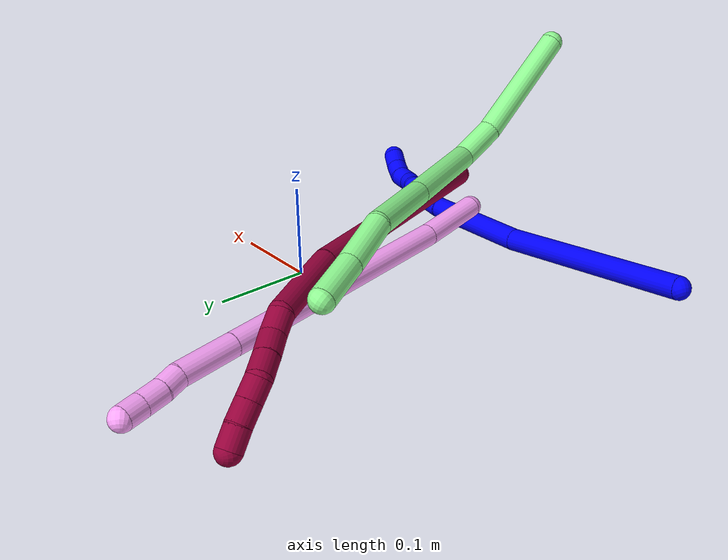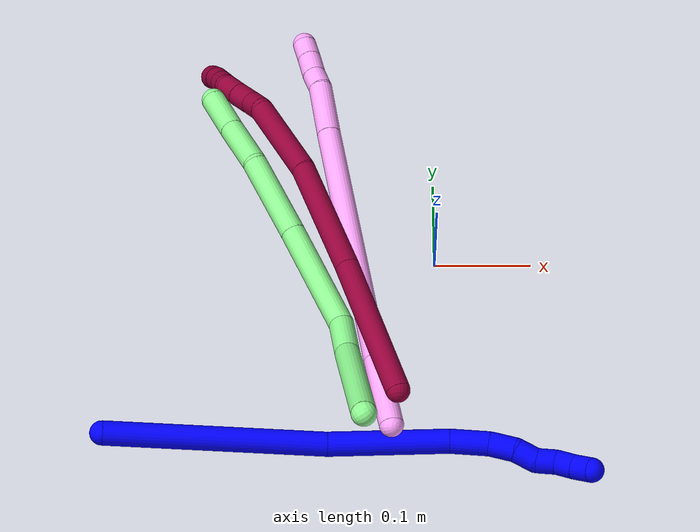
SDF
<sdf version="1.7">
 <world name="default">
  <model name="1">
   <static>0</static>
   <link name="1">
    <collision name="collision-cylinder-e_1_1_4">
     <pose>0.091996 0.01532 -0.063463 -2.90473 0.95362 -2.68879</pose>
     <geometry><cylinder><radius>0.0125</radius><length>0.225615</length></cylinder></geometry>
     <surface>
      <friction><ode><mu>1.16</mu><mu2>1.16</mu2><slip1>0</slip1><slip2>0</slip2></ode></friction>
      <contact><ode><kp>1e+06</kp><kd>1</kd><max_vel>0</max_vel><min_depth>0.001</min_depth></ode></contact>
     </surface>
    </collision>
    <visual name="visual-cylinder-e_1_1_4">
     <pose>0.091996 0.01532 -0.063463 -2.90473 0.95362 -2.68879</pose>
     <geometry><cylinder><radius>0.0125</radius><length>0.225615</length></cylinder></geometry>
     <material><ambient>0 0 1 1</ambient></material>
    </visual>
    <collision name="collision-cylinder-e_2_4_5">
     <pose>0.230759 0.035034 -0.166847 -3.03196 0.861218 -2.90382</pose>
     <geometry><cylinder><radius>0.0125</radius><length>0.12329</length></cylinder></geometry>
     <surface>
      <friction><ode><mu>1.16</mu><mu2>1.16</mu2><slip1>0</slip1><slip2>0</slip2></ode></friction>
      <contact><ode><kp>1e+06</kp><kd>1</kd><max_vel>0</max_vel><min_depth>0.001</min_depth></ode></contact>
     </surface>
    </collision>
    <visual name="visual-cylinder-e_2_4_5">
     <pose>0.230759 0.035034 -0.166847 -3.03196 0.861218 -2.90382</pose>
     <geometry><cylinder><radius>0.0125</radius><length>0.12329</length></cylinder></geometry>
     <material><ambient>0 0 1 1</ambient></material>
    </visual>
    <collision name="collision-cylinder-e_3_5_6">
     <pose>0.290927 0.042919 -0.221331 -2.90632 0.730037 -2.54172</pose>
     <geometry><cylinder><radius>0.0125</radius><length>0.040193</length></cylinder></geometry>
     <surface>
      <friction><ode><mu>1.16</mu><mu2>1.16</mu2><slip1>0</slip1><slip2>0</slip2></ode></friction>
      <contact><ode><kp>1e+06</kp><kd>1</kd><max_vel>0</max_vel><min_depth>0.001</min_depth></ode></contact>
     </surface>
    </collision>
    <visual name="visual-cylinder-e_3_5_6">
     <pose>0.290927 0.042919 -0.221331 -2.90632 0.730037 -2.54172</pose>
     <geometry><cylinder><radius>0.0125</radius><length>0.040193</length></cylinder></geometry>
     <material><ambient>0 0 1 1</ambient></material>
    </visual>
    <collision name="collision-cylinder-e_4_6_7">
     <pose>0.311897 0.051017 -0.246252 -2.72309 0.588526 -1.91918</pose>
     <geometry><cylinder><radius>0.0125</radius><length>0.027262</length></cylinder></geometry>
     <surface>
      <friction><ode><mu>1.16</mu><mu2>1.16</mu2><slip1>0</slip1><slip2>0</slip2></ode></friction>
      <contact><ode><kp>1e+06</kp><kd>1</kd><max_vel>0</max_vel><min_depth>0.001</min_depth></ode></contact>
     </surface>
    </collision>
    <visual name="visual-cylinder-e_4_6_7">
     <pose>0.311897 0.051017 -0.246252 -2.72309 0.588526 -1.91918</pose>
     <geometry><cylinder><radius>0.0125</radius><length>0.027262</length></cylinder></geometry>
     <material><ambient>0 0 1 1</ambient></material>
    </visual>
    <collision name="collision-cylinder-e_5_7_8">
     <pose>0.326143 0.061915 -0.26324 -2.3824 0.631228 -1.37181</pose>
     <geometry><cylinder><radius>0.0125</radius><length>0.022638</length></cylinder></geometry>
     <surface>
      <friction><ode><mu>1.16</mu><mu2>1.16</mu2><slip1>0</slip1><slip2>0</slip2></ode></friction>
      <contact><ode><kp>1e+06</kp><kd>1</kd><max_vel>0</max_vel><min_depth>0.001</min_depth></ode></contact>
     </surface>
    </collision>
    <visual name="visual-cylinder-e_5_7_8">
     <pose>0.326143 0.061915 -0.26324 -2.3824 0.631228 -1.37181</pose>
     <geometry><cylinder><radius>0.0125</radius><length>0.022638</length></cylinder></geometry>
     <material><ambient>0 0 1 1</ambient></material>
    </visual>
    <collision name="collision-cylinder-e_6_8_9">
     <pose>0.339679 0.070049 -0.277244 -2.89651 0.733797 -2.52133</pose>
     <geometry><cylinder><radius>0.0125</radius><length>0.020475</length></cylinder></geometry>
     <surface>
      <friction><ode><mu>1.16</mu><mu2>1.16</mu2><slip1>0</slip1><slip2>0</slip2></ode></friction>
      <contact><ode><kp>1e+06</kp><kd>1</kd><max_vel>0</max_vel><min_depth>0.001</min_depth></ode></contact>
     </surface>
    </collision>
    <visual name="visual-cylinder-e_6_8_9">
     <pose>0.339679 0.070049 -0.277244 -2.89651 0.733797 -2.52133</pose>
     <geometry><cylinder><radius>0.0125</radius><length>0.020475</length></cylinder></geometry>
     <material><ambient>0 0 1 1</ambient></material>
    </visual>
    <collision name="collision-cylinder-e_7_9_10">
     <pose>0.350253 0.075564 -0.293392 -2.74534 0.372664 -1.50793</pose>
     <geometry><cylinder><radius>0.0125</radius><length>0.020421</length></cylinder></geometry>
     <surface>
      <friction><ode><mu>1.16</mu><mu2>1.16</mu2><slip1>0</slip1><slip2>0</slip2></ode></friction>
      <contact><ode><kp>1e+06</kp><kd>1</kd><max_vel>0</max_vel><min_depth>0.001</min_depth></ode></contact>
     </surface>
    </collision>
    <visual name="visual-cylinder-e_7_9_10">
     <pose>0.350253 0.075564 -0.293392 -2.74534 0.372664 -1.50793</pose>
     <geometry><cylinder><radius>0.0125</radius><length>0.020421</length></cylinder></geometry>
     <material><ambient>0 0 1 1</ambient></material>
    </visual>
    <collision name="collision-cylinder-e_8_10_2">
     <pose>0.356057 0.082053 -0.311587 -2.85098 0.20913 -1.24431</pose>
     <geometry><cylinder><radius>0.0125</radius><length>0.020106</length></cylinder></geometry>
     <surface>
      <friction><ode><mu>1.16</mu><mu2>1.16</mu2><slip1>0</slip1><slip2>0</slip2></ode></friction>
      <contact><ode><kp>1e+06</kp><kd>1</kd><max_vel>0</max_vel><min_depth>0.001</min_depth></ode></contact>
     </surface>
    </collision>
    <visual name="visual-cylinder-e_8_10_2">
     <pose>0.356057 0.082053 -0.311587 -2.85098 0.20913 -1.24431</pose>
     <geometry><cylinder><radius>0.0125</radius><length>0.020106</length></cylinder></geometry>
     <material><ambient>0 0 1 1</ambient></material>
    </visual>
    <collision name="collision-sphere-2">
     <pose>0.358144 0.08487 -0.321009 0 -0 0</pose>
     <geometry><sphere><radius>0.0125</radius></sphere></geometry>
     <surface>
      <friction><ode><mu>1.16</mu><mu2>1.16</mu2><slip1>0</slip1><slip2>0</slip2></ode></friction>
      <contact><ode><kp>1e+06</kp><kd>1</kd><max_vel>0</max_vel><min_depth>0.001</min_depth></ode></contact>
     </surface>
    </collision>
    <visual name="visual-sphere-2">
     <pose>0.358144 0.08487 -0.321009 0 -0 0</pose>
     <geometry><sphere><radius>0.0125</radius></sphere></geometry>
     <material><ambient>0 0 1 1</ambient></material>
    </visual>
    <collision name="collision-sphere-10">
     <pose>0.35397 0.079235 -0.302165 0 -0 0</pose>
     <geometry><sphere><radius>0.0125</radius></sphere></geometry>
     <surface>
      <friction><ode><mu>1.16</mu><mu2>1.16</mu2><slip1>0</slip1><slip2>0</slip2></ode></friction>
      <contact><ode><kp>1e+06</kp><kd>1</kd><max_vel>0</max_vel><min_depth>0.001</min_depth></ode></contact>
     </surface>
    </collision>
    <visual name="visual-sphere-10">
     <pose>0.35397 0.079235 -0.302165 0 -0 0</pose>
     <geometry><sphere><radius>0.0125</radius></sphere></geometry>
     <material><ambient>0 0 1 1</ambient></material>
    </visual>
    <collision name="collision-sphere-9">
     <pose>0.346535 0.071894 -0.284619 0 -0 0</pose>
     <geometry><sphere><radius>0.0125</radius></sphere></geometry>
     <surface>
      <friction><ode><mu>1.16</mu><mu2>1.16</mu2><slip1>0</slip1><slip2>0</slip2></ode></friction>
      <contact><ode><kp>1e+06</kp><kd>1</kd><max_vel>0</max_vel><min_depth>0.001</min_depth></ode></contact>
     </surface>
    </collision>
    <visual name="visual-sphere-9">
     <pose>0.346535 0.071894 -0.284619 0 -0 0</pose>
     <geometry><sphere><radius>0.0125</radius></sphere></geometry>
     <material><ambient>0 0 1 1</ambient></material>
    </visual>
    <collision name="collision-sphere-4">
     <pose>0.183993 0.030639 -0.126926 0 -0 0</pose>
     <geometry><sphere><radius>0.0125</radius></sphere></geometry>
     <surface>
      <friction><ode><mu>1.16</mu><mu2>1.16</mu2><slip1>0</slip1><slip2>0</slip2></ode></friction>
      <contact><ode><kp>1e+06</kp><kd>1</kd><max_vel>0</max_vel><min_depth>0.001</min_depth></ode></contact>
     </surface>
    </collision>
    <visual name="visual-sphere-4">
     <pose>0.183993 0.030639 -0.126926 0 -0 0</pose>
     <geometry><sphere><radius>0.0125</radius></sphere></geometry>
     <material><ambient>0 0 1 1</ambient></material>
    </visual>
    <collision name="collision-sphere-1">
     <geometry><sphere><radius>0.0125</radius></sphere></geometry>
     <surface>
      <friction><ode><mu>1.16</mu><mu2>1.16</mu2><slip1>0</slip1><slip2>0</slip2></ode></friction>
      <contact><ode><kp>1e+06</kp><kd>1</kd><max_vel>0</max_vel><min_depth>0.001</min_depth></ode></contact>
     </surface>
    </collision>
    <visual name="visual-sphere-1">
     <geometry><sphere><radius>0.0125</radius></sphere></geometry>
     <material><ambient>0 0 1 1</ambient></material>
    </visual>
    <collision name="collision-sphere-8">
     <pose>0.332823 0.068205 -0.269868 0 -0 0</pose>
     <geometry><sphere><radius>0.0125</radius></sphere></geometry>
     <surface>
      <friction><ode><mu>1.16</mu><mu2>1.16</mu2><slip1>0</slip1><slip2>0</slip2></ode></friction>
      <contact><ode><kp>1e+06</kp><kd>1</kd><max_vel>0</max_vel><min_depth>0.001</min_depth></ode></contact>
     </surface>
    </collision>
    <visual name="visual-sphere-8">
     <pose>0.332823 0.068205 -0.269868 0 -0 0</pose>
     <geometry><sphere><radius>0.0125</radius></sphere></geometry>
     <material><ambient>0 0 1 1</ambient></material>
    </visual>
    <collision name="collision-sphere-5">
     <pose>0.277525 0.039428 -0.206769 0 -0 0</pose>
     <geometry><sphere><radius>0.0125</radius></sphere></geometry>
     <surface>
      <friction><ode><mu>1.16</mu><mu2>1.16</mu2><slip1>0</slip1><slip2>0</slip2></ode></friction>
      <contact><ode><kp>1e+06</kp><kd>1</kd><max_vel>0</max_vel><min_depth>0.001</min_depth></ode></contact>
     </surface>
    </collision>
    <visual name="visual-sphere-5">
     <pose>0.277525 0.039428 -0.206769 0 -0 0</pose>
     <geometry><sphere><radius>0.0125</radius></sphere></geometry>
     <material><ambient>0 0 1 1</ambient></material>
    </visual>
    <collision name="collision-sphere-6">
     <pose>0.30433 0.04641 -0.235893 0 -0 0</pose>
     <geometry><sphere><radius>0.0125</radius></sphere></geometry>
     <surface>
      <friction><ode><mu>1.16</mu><mu2>1.16</mu2><slip1>0</slip1><slip2>0</slip2></ode></friction>
      <contact><ode><kp>1e+06</kp><kd>1</kd><max_vel>0</max_vel><min_depth>0.001</min_depth></ode></contact>
     </surface>
    </collision>
    <visual name="visual-sphere-6">
     <pose>0.30433 0.04641 -0.235893 0 -0 0</pose>
     <geometry><sphere><radius>0.0125</radius></sphere></geometry>
     <material><ambient>0 0 1 1</ambient></material>
    </visual>
    <collision name="collision-sphere-7">
     <pose>0.319463 0.055625 -0.256611 0 -0 0</pose>
     <geometry><sphere><radius>0.0125</radius></sphere></geometry>
     <surface>
      <friction><ode><mu>1.16</mu><mu2>1.16</mu2><slip1>0</slip1><slip2>0</slip2></ode></friction>
      <contact><ode><kp>1e+06</kp><kd>1</kd><max_vel>0</max_vel><min_depth>0.001</min_depth></ode></contact>
     </surface>
    </collision>
    <visual name="visual-sphere-7">
     <pose>0.319463 0.055625 -0.256611 0 -0 0</pose>
     <geometry><sphere><radius>0.0125</radius></sphere></geometry>
     <material><ambient>0 0 1 1</ambient></material>
    </visual>
    <inertial>
     <pose>0.196103 0.03384 -0.14878 0 -0 0</pose>
     <mass>0.5</mass>
     <inertia>
      <ixx>-0.000861</ixx>
      <ixy>0</ixy>
      <ixz>0</ixz>
      <iyy>0.00082</iyy>
      <iyz>0</iyz>
      <izz>-0.001091</izz>
     </inertia>
    </inertial>
   </link>
   <pose>-0.336019 -0.221211 0.038435 -2.6198 0.606138 0.42008</pose>
  </model>
  <model name="4">
   <static>0</static>
   <link name="4">
    <collision name="collision-cylinder-e_1_1_4">
     <pose>0.005773 0.031715 0.024887 -0.905455 0.14223 -0.069273</pose>
     <geometry><cylinder><radius>0.0125</radius><length>0.081451</length></cylinder></geometry>
     <surface>
      <friction><ode><mu>1.16</mu><mu2>1.16</mu2><slip1>0</slip1><slip2>0</slip2></ode></friction>
      <contact><ode><kp>1e+06</kp><kd>1</kd><max_vel>0</max_vel><min_depth>0.001</min_depth></ode></contact>
     </surface>
    </collision>
    <visual name="visual-cylinder-e_1_1_4">
     <pose>0.005773 0.031715 0.024887 -0.905455 0.14223 -0.069273</pose>
     <geometry><cylinder><radius>0.0125</radius><length>0.081451</length></cylinder></geometry>
     <material><ambient>1 0.65098 0.996078 1</ambient></material>
    </visual>
    <collision name="collision-cylinder-e_2_4_5">
     <pose>0.035799 0.179946 0.131443 -0.959448 0.16883 -0.087988</pose>
     <geometry><cylinder><radius>0.0125</radius><length>0.288679</length></cylinder></geometry>
     <surface>
      <friction><ode><mu>1.16</mu><mu2>1.16</mu2><slip1>0</slip1><slip2>0</slip2></ode></friction>
      <contact><ode><kp>1e+06</kp><kd>1</kd><max_vel>0</max_vel><min_depth>0.001</min_depth></ode></contact>
     </surface>
    </collision>
    <visual name="visual-cylinder-e_2_4_5">
     <pose>0.035799 0.179946 0.131443 -0.959448 0.16883 -0.087988</pose>
     <geometry><cylinder><radius>0.0125</radius><length>0.288679</length></cylinder></geometry>
     <material><ambient>1 0.65098 0.996078 1</ambient></material>
    </visual>
    <collision name="collision-cylinder-e_3_5_6">
     <pose>0.0646 0.322256 0.231074 -0.962507 0.143701 -0.075135</pose>
     <geometry><cylinder><radius>0.0125</radius><length>0.063519</length></cylinder></geometry>
     <surface>
      <friction><ode><mu>1.16</mu><mu2>1.16</mu2><slip1>0</slip1><slip2>0</slip2></ode></friction>
      <contact><ode><kp>1e+06</kp><kd>1</kd><max_vel>0</max_vel><min_depth>0.001</min_depth></ode></contact>
     </surface>
    </collision>
    <visual name="visual-cylinder-e_3_5_6">
     <pose>0.0646 0.322256 0.231074 -0.962507 0.143701 -0.075135</pose>
     <geometry><cylinder><radius>0.0125</radius><length>0.063519</length></cylinder></geometry>
     <material><ambient>1 0.65098 0.996078 1</ambient></material>
    </visual>
    <collision name="collision-cylinder-e_4_6_7">
     <pose>0.071042 0.355019 0.256663 -0.740366 0.181236 -0.070497</pose>
     <geometry><cylinder><radius>0.0125</radius><length>0.021007</length></cylinder></geometry>
     <surface>
      <friction><ode><mu>1.16</mu><mu2>1.16</mu2><slip1>0</slip1><slip2>0</slip2></ode></friction>
      <contact><ode><kp>1e+06</kp><kd>1</kd><max_vel>0</max_vel><min_depth>0.001</min_depth></ode></contact>
     </surface>
    </collision>
    <visual name="visual-cylinder-e_4_6_7">
     <pose>0.071042 0.355019 0.256663 -0.740366 0.181236 -0.070497</pose>
     <geometry><cylinder><radius>0.0125</radius><length>0.021007</length></cylinder></geometry>
     <material><ambient>1 0.65098 0.996078 1</ambient></material>
    </visual>
    <collision name="collision-cylinder-e_5_7_8">
     <pose>0.074898 0.371176 0.272056 -0.869046 0.161754 -0.0752</pose>
     <geometry><cylinder><radius>0.0125</radius><length>0.024379</length></cylinder></geometry>
     <surface>
      <friction><ode><mu>1.16</mu><mu2>1.16</mu2><slip1>0</slip1><slip2>0</slip2></ode></friction>
      <contact><ode><kp>1e+06</kp><kd>1</kd><max_vel>0</max_vel><min_depth>0.001</min_depth></ode></contact>
     </surface>
    </collision>
    <visual name="visual-cylinder-e_5_7_8">
     <pose>0.074898 0.371176 0.272056 -0.869046 0.161754 -0.0752</pose>
     <geometry><cylinder><radius>0.0125</radius><length>0.024379</length></cylinder></geometry>
     <material><ambient>1 0.65098 0.996078 1</ambient></material>
    </visual>
    <collision name="collision-cylinder-e_6_8_2">
     <pose>0.079125 0.38821 0.286395 -0.873581 0.217708 -0.101955</pose>
     <geometry><cylinder><radius>0.0125</radius><length>0.020966</length></cylinder></geometry>
     <surface>
      <friction><ode><mu>1.16</mu><mu2>1.16</mu2><slip1>0</slip1><slip2>0</slip2></ode></friction>
      <contact><ode><kp>1e+06</kp><kd>1</kd><max_vel>0</max_vel><min_depth>0.001</min_depth></ode></contact>
     </surface>
    </collision>
    <visual name="visual-cylinder-e_6_8_2">
     <pose>0.079125 0.38821 0.286395 -0.873581 0.217708 -0.101955</pose>
     <geometry><cylinder><radius>0.0125</radius><length>0.020966</length></cylinder></geometry>
     <material><ambient>1 0.65098 0.996078 1</ambient></material>
    </visual>
    <collision name="collision-sphere-2">
     <pose>0.08139 0.396057 0.292967 0 -0 0</pose>
     <geometry><sphere><radius>0.0125</radius></sphere></geometry>
     <surface>
      <friction><ode><mu>1.16</mu><mu2>1.16</mu2><slip1>0</slip1><slip2>0</slip2></ode></friction>
      <contact><ode><kp>1e+06</kp><kd>1</kd><max_vel>0</max_vel><min_depth>0.001</min_depth></ode></contact>
     </surface>
    </collision>
    <visual name="visual-sphere-2">
     <pose>0.08139 0.396057 0.292967 0 -0 0</pose>
     <geometry><sphere><radius>0.0125</radius></sphere></geometry>
     <material><ambient>1 0.65098 0.996078 1</ambient></material>
    </visual>
    <collision name="collision-sphere-4">
     <pose>0.011546 0.063431 0.049774 0 -0 0</pose>
     <geometry><sphere><radius>0.0125</radius></sphere></geometry>
     <surface>
      <friction><ode><mu>1.16</mu><mu2>1.16</mu2><slip1>0</slip1><slip2>0</slip2></ode></friction>
      <contact><ode><kp>1e+06</kp><kd>1</kd><max_vel>0</max_vel><min_depth>0.001</min_depth></ode></contact>
     </surface>
    </collision>
    <visual name="visual-sphere-4">
     <pose>0.011546 0.063431 0.049774 0 -0 0</pose>
     <geometry><sphere><radius>0.0125</radius></sphere></geometry>
     <material><ambient>1 0.65098 0.996078 1</ambient></material>
    </visual>
    <collision name="collision-sphere-1">
     <geometry><sphere><radius>0.0125</radius></sphere></geometry>
     <surface>
      <friction><ode><mu>1.16</mu><mu2>1.16</mu2><slip1>0</slip1><slip2>0</slip2></ode></friction>
      <contact><ode><kp>1e+06</kp><kd>1</kd><max_vel>0</max_vel><min_depth>0.001</min_depth></ode></contact>
     </surface>
    </collision>
    <visual name="visual-sphere-1">
     <geometry><sphere><radius>0.0125</radius></sphere></geometry>
     <material><ambient>1 0.65098 0.996078 1</ambient></material>
    </visual>
    <collision name="collision-sphere-8">
     <pose>0.076861 0.380363 0.279823 0 -0 0</pose>
     <geometry><sphere><radius>0.0125</radius></sphere></geometry>
     <surface>
      <friction><ode><mu>1.16</mu><mu2>1.16</mu2><slip1>0</slip1><slip2>0</slip2></ode></friction>
      <contact><ode><kp>1e+06</kp><kd>1</kd><max_vel>0</max_vel><min_depth>0.001</min_depth></ode></contact>
     </surface>
    </collision>
    <visual name="visual-sphere-8">
     <pose>0.076861 0.380363 0.279823 0 -0 0</pose>
     <geometry><sphere><radius>0.0125</radius></sphere></geometry>
     <material><ambient>1 0.65098 0.996078 1</ambient></material>
    </visual>
    <collision name="collision-sphere-5">
     <pose>0.060052 0.296462 0.213112 0 -0 0</pose>
     <geometry><sphere><radius>0.0125</radius></sphere></geometry>
     <surface>
      <friction><ode><mu>1.16</mu><mu2>1.16</mu2><slip1>0</slip1><slip2>0</slip2></ode></friction>
      <contact><ode><kp>1e+06</kp><kd>1</kd><max_vel>0</max_vel><min_depth>0.001</min_depth></ode></contact>
     </surface>
    </collision>
    <visual name="visual-sphere-5">
     <pose>0.060052 0.296462 0.213112 0 -0 0</pose>
     <geometry><sphere><radius>0.0125</radius></sphere></geometry>
     <material><ambient>1 0.65098 0.996078 1</ambient></material>
    </visual>
    <collision name="collision-sphere-6">
     <pose>0.069149 0.34805 0.249036 0 -0 0</pose>
     <geometry><sphere><radius>0.0125</radius></sphere></geometry>
     <surface>
      <friction><ode><mu>1.16</mu><mu2>1.16</mu2><slip1>0</slip1><slip2>0</slip2></ode></friction>
      <contact><ode><kp>1e+06</kp><kd>1</kd><max_vel>0</max_vel><min_depth>0.001</min_depth></ode></contact>
     </surface>
    </collision>
    <visual name="visual-sphere-6">
     <pose>0.069149 0.34805 0.249036 0 -0 0</pose>
     <geometry><sphere><radius>0.0125</radius></sphere></geometry>
     <material><ambient>1 0.65098 0.996078 1</ambient></material>
    </visual>
    <collision name="collision-sphere-7">
     <pose>0.072935 0.361988 0.26429 0 -0 0</pose>
     <geometry><sphere><radius>0.0125</radius></sphere></geometry>
     <surface>
      <friction><ode><mu>1.16</mu><mu2>1.16</mu2><slip1>0</slip1><slip2>0</slip2></ode></friction>
      <contact><ode><kp>1e+06</kp><kd>1</kd><max_vel>0</max_vel><min_depth>0.001</min_depth></ode></contact>
     </surface>
    </collision>
    <visual name="visual-sphere-7">
     <pose>0.072935 0.361988 0.26429 0 -0 0</pose>
     <geometry><sphere><radius>0.0125</radius></sphere></geometry>
     <material><ambient>1 0.65098 0.996078 1</ambient></material>
    </visual>
    <inertial>
     <pose>0.03977 0.19929 0.145356 0 -0 0</pose>
     <mass>0.5</mass>
     <inertia>
      <ixx>0.001882</ixx>
      <ixy>0</ixy>
      <ixz>0</ixz>
      <iyy>0.001075</iyy>
      <iyz>0</iyz>
      <izz>-0.002015</izz>
     </inertia>
    </inertial>
   </link>
   <pose>-0.047669 -0.210492 0.034307 2.72586 -0.755792 3.05003</pose>
  </model>
  <model name="8">
   <static>0</static>
   <link name="8">
    <collision name="collision-cylinder-e_1_1_4">
     <pose>0.001357 0.020428 -0.073545 -2.87065 0.017776 -0.130233</pose>
     <geometry><cylinder><radius>0.0125</radius><length>0.152683</length></cylinder></geometry>
     <surface>
      <friction><ode><mu>1.16</mu><mu2>1.16</mu2><slip1>0</slip1><slip2>0</slip2></ode></friction>
      <contact><ode><kp>1e+06</kp><kd>1</kd><max_vel>0</max_vel><min_depth>0.001</min_depth></ode></contact>
     </surface>
    </collision>
    <visual name="visual-cylinder-e_1_1_4">
     <pose>0.001357 0.020428 -0.073545 -2.87065 0.017776 -0.130233</pose>
     <geometry><cylinder><radius>0.0125</radius><length>0.152683</length></cylinder></geometry>
     <material><ambient>0.584314 0 0.227451 1</ambient></material>
    </visual>
    <collision name="collision-cylinder-e_2_4_5">
     <pose>0.005971 0.059291 -0.206101 -2.83881 0.052634 -0.341723</pose>
     <geometry><cylinder><radius>0.0125</radius><length>0.123818</length></cylinder></geometry>
     <surface>
      <friction><ode><mu>1.16</mu><mu2>1.16</mu2><slip1>0</slip1><slip2>0</slip2></ode></friction>
      <contact><ode><kp>1e+06</kp><kd>1</kd><max_vel>0</max_vel><min_depth>0.001</min_depth></ode></contact>
     </surface>
    </collision>
    <visual name="visual-cylinder-e_2_4_5">
     <pose>0.005971 0.059291 -0.206101 -2.83881 0.052634 -0.341723</pose>
     <geometry><cylinder><radius>0.0125</radius><length>0.123818</length></cylinder></geometry>
     <material><ambient>0.584314 0 0.227451 1</ambient></material>
    </visual>
    <collision name="collision-cylinder-e_3_5_6">
     <pose>0.007095 0.09782 -0.306148 -2.68624 -0.046643 0.200677</pose>
     <geometry><cylinder><radius>0.0125</radius><length>0.091483</length></cylinder></geometry>
     <surface>
      <friction><ode><mu>1.16</mu><mu2>1.16</mu2><slip1>0</slip1><slip2>0</slip2></ode></friction>
      <contact><ode><kp>1e+06</kp><kd>1</kd><max_vel>0</max_vel><min_depth>0.001</min_depth></ode></contact>
     </surface>
    </collision>
    <visual name="visual-cylinder-e_3_5_6">
     <pose>0.007095 0.09782 -0.306148 -2.68624 -0.046643 0.200677</pose>
     <geometry><cylinder><radius>0.0125</radius><length>0.091483</length></cylinder></geometry>
     <material><ambient>0.584314 0 0.227451 1</ambient></material>
    </visual>
    <collision name="collision-cylinder-e_4_6_7">
     <pose>-0.000565 0.123545 -0.355547 -2.54895 -0.501512 1.39612</pose>
     <geometry><cylinder><radius>0.0125</radius><length>0.022996</length></cylinder></geometry>
     <surface>
      <friction><ode><mu>1.16</mu><mu2>1.16</mu2><slip1>0</slip1><slip2>0</slip2></ode></friction>
      <contact><ode><kp>1e+06</kp><kd>1</kd><max_vel>0</max_vel><min_depth>0.001</min_depth></ode></contact>
     </surface>
    </collision>
    <visual name="visual-cylinder-e_4_6_7">
     <pose>-0.000565 0.123545 -0.355547 -2.54895 -0.501512 1.39612</pose>
     <geometry><cylinder><radius>0.0125</radius><length>0.022996</length></cylinder></geometry>
     <material><ambient>0.584314 0 0.227451 1</ambient></material>
    </visual>
    <collision name="collision-cylinder-e_5_7_8">
     <pose>-0.009076 0.136518 -0.372481 -2.43337 -0.258461 0.676054</pose>
     <geometry><cylinder><radius>0.0125</radius><length>0.023346</length></cylinder></geometry>
     <surface>
      <friction><ode><mu>1.16</mu><mu2>1.16</mu2><slip1>0</slip1><slip2>0</slip2></ode></friction>
      <contact><ode><kp>1e+06</kp><kd>1</kd><max_vel>0</max_vel><min_depth>0.001</min_depth></ode></contact>
     </surface>
    </collision>
    <visual name="visual-cylinder-e_5_7_8">
     <pose>-0.009076 0.136518 -0.372481 -2.43337 -0.258461 0.676054</pose>
     <geometry><cylinder><radius>0.0125</radius><length>0.023346</length></cylinder></geometry>
     <material><ambient>0.584314 0 0.227451 1</ambient></material>
    </visual>
    <collision name="collision-cylinder-e_6_8_9">
     <pose>-0.015319 0.150639 -0.389651 -2.47388 -0.289258 0.795128</pose>
     <geometry><cylinder><radius>0.0125</radius><length>0.022849</length></cylinder></geometry>
     <surface>
      <friction><ode><mu>1.16</mu><mu2>1.16</mu2><slip1>0</slip1><slip2>0</slip2></ode></friction>
      <contact><ode><kp>1e+06</kp><kd>1</kd><max_vel>0</max_vel><min_depth>0.001</min_depth></ode></contact>
     </surface>
    </collision>
    <visual name="visual-cylinder-e_6_8_9">
     <pose>-0.015319 0.150639 -0.389651 -2.47388 -0.289258 0.795128</pose>
     <geometry><cylinder><radius>0.0125</radius><length>0.022849</length></cylinder></geometry>
     <material><ambient>0.584314 0 0.227451 1</ambient></material>
    </visual>
    <collision name="collision-cylinder-e_7_9_10">
     <pose>-0.025129 0.16077 -0.405218 -2.69333 -0.702895 2.02914</pose>
     <geometry><cylinder><radius>0.0125</radius><length>0.020269</length></cylinder></geometry>
     <surface>
      <friction><ode><mu>1.16</mu><mu2>1.16</mu2><slip1>0</slip1><slip2>0</slip2></ode></friction>
      <contact><ode><kp>1e+06</kp><kd>1</kd><max_vel>0</max_vel><min_depth>0.001</min_depth></ode></contact>
     </surface>
    </collision>
    <visual name="visual-cylinder-e_7_9_10">
     <pose>-0.025129 0.16077 -0.405218 -2.69333 -0.702895 2.02914</pose>
     <geometry><cylinder><radius>0.0125</radius><length>0.020269</length></cylinder></geometry>
     <material><ambient>0.584314 0 0.227451 1</ambient></material>
    </visual>
    <collision name="collision-cylinder-e_8_10_11">
     <pose>-0.038395 0.167691 -0.419494 -2.68717 -0.690183 1.99849</pose>
     <geometry><cylinder><radius>0.0125</radius><length>0.021095</length></cylinder></geometry>
     <surface>
      <friction><ode><mu>1.16</mu><mu2>1.16</mu2><slip1>0</slip1><slip2>0</slip2></ode></friction>
      <contact><ode><kp>1e+06</kp><kd>1</kd><max_vel>0</max_vel><min_depth>0.001</min_depth></ode></contact>
     </surface>
    </collision>
    <visual name="visual-cylinder-e_8_10_11">
     <pose>-0.038395 0.167691 -0.419494 -2.68717 -0.690183 1.99849</pose>
     <geometry><cylinder><radius>0.0125</radius><length>0.021095</length></cylinder></geometry>
     <material><ambient>0.584314 0 0.227451 1</ambient></material>
    </visual>
    <collision name="collision-cylinder-e_9_11_2">
     <pose>-0.052795 0.17485 -0.433376 -2.64189 -0.798245 2.05336</pose>
     <geometry><cylinder><radius>0.0125</radius><length>0.021461</length></cylinder></geometry>
     <surface>
      <friction><ode><mu>1.16</mu><mu2>1.16</mu2><slip1>0</slip1><slip2>0</slip2></ode></friction>
      <contact><ode><kp>1e+06</kp><kd>1</kd><max_vel>0</max_vel><min_depth>0.001</min_depth></ode></contact>
     </surface>
    </collision>
    <visual name="visual-cylinder-e_9_11_2">
     <pose>-0.052795 0.17485 -0.433376 -2.64189 -0.798245 2.05336</pose>
     <geometry><cylinder><radius>0.0125</radius><length>0.021461</length></cylinder></geometry>
     <material><ambient>0.584314 0 0.227451 1</ambient></material>
    </visual>
    <collision name="collision-sphere-2">
     <pose>-0.060479 0.178439 -0.439949 0 -0 0</pose>
     <geometry><sphere><radius>0.0125</radius></sphere></geometry>
     <surface>
      <friction><ode><mu>1.16</mu><mu2>1.16</mu2><slip1>0</slip1><slip2>0</slip2></ode></friction>
      <contact><ode><kp>1e+06</kp><kd>1</kd><max_vel>0</max_vel><min_depth>0.001</min_depth></ode></contact>
     </surface>
    </collision>
    <visual name="visual-sphere-2">
     <pose>-0.060479 0.178439 -0.439949 0 -0 0</pose>
     <geometry><sphere><radius>0.0125</radius></sphere></geometry>
     <material><ambient>0.584314 0 0.227451 1</ambient></material>
    </visual>
    <collision name="collision-sphere-11">
     <pose>-0.045111 0.171261 -0.426802 0 -0 0</pose>
     <geometry><sphere><radius>0.0125</radius></sphere></geometry>
     <surface>
      <friction><ode><mu>1.16</mu><mu2>1.16</mu2><slip1>0</slip1><slip2>0</slip2></ode></friction>
      <contact><ode><kp>1e+06</kp><kd>1</kd><max_vel>0</max_vel><min_depth>0.001</min_depth></ode></contact>
     </surface>
    </collision>
    <visual name="visual-sphere-11">
     <pose>-0.045111 0.171261 -0.426802 0 -0 0</pose>
     <geometry><sphere><radius>0.0125</radius></sphere></geometry>
     <material><ambient>0.584314 0 0.227451 1</ambient></material>
    </visual>
    <collision name="collision-sphere-10">
     <pose>-0.03168 0.164121 -0.412186 0 -0 0</pose>
     <geometry><sphere><radius>0.0125</radius></sphere></geometry>
     <surface>
      <friction><ode><mu>1.16</mu><mu2>1.16</mu2><slip1>0</slip1><slip2>0</slip2></ode></friction>
      <contact><ode><kp>1e+06</kp><kd>1</kd><max_vel>0</max_vel><min_depth>0.001</min_depth></ode></contact>
     </surface>
    </collision>
    <visual name="visual-sphere-10">
     <pose>-0.03168 0.164121 -0.412186 0 -0 0</pose>
     <geometry><sphere><radius>0.0125</radius></sphere></geometry>
     <material><ambient>0.584314 0 0.227451 1</ambient></material>
    </visual>
    <collision name="collision-sphere-9">
     <pose>-0.018578 0.157419 -0.398249 0 -0 0</pose>
     <geometry><sphere><radius>0.0125</radius></sphere></geometry>
     <surface>
      <friction><ode><mu>1.16</mu><mu2>1.16</mu2><slip1>0</slip1><slip2>0</slip2></ode></friction>
      <contact><ode><kp>1e+06</kp><kd>1</kd><max_vel>0</max_vel><min_depth>0.001</min_depth></ode></contact>
     </surface>
    </collision>
    <visual name="visual-sphere-9">
     <pose>-0.018578 0.157419 -0.398249 0 -0 0</pose>
     <geometry><sphere><radius>0.0125</radius></sphere></geometry>
     <material><ambient>0.584314 0 0.227451 1</ambient></material>
    </visual>
    <collision name="collision-sphere-4">
     <pose>0.002714 0.040857 -0.14709 0 -0 0</pose>
     <geometry><sphere><radius>0.0125</radius></sphere></geometry>
     <surface>
      <friction><ode><mu>1.16</mu><mu2>1.16</mu2><slip1>0</slip1><slip2>0</slip2></ode></friction>
      <contact><ode><kp>1e+06</kp><kd>1</kd><max_vel>0</max_vel><min_depth>0.001</min_depth></ode></contact>
     </surface>
    </collision>
    <visual name="visual-sphere-4">
     <pose>0.002714 0.040857 -0.14709 0 -0 0</pose>
     <geometry><sphere><radius>0.0125</radius></sphere></geometry>
     <material><ambient>0.584314 0 0.227451 1</ambient></material>
    </visual>
    <collision name="collision-sphere-1">
     <geometry><sphere><radius>0.0125</radius></sphere></geometry>
     <surface>
      <friction><ode><mu>1.16</mu><mu2>1.16</mu2><slip1>0</slip1><slip2>0</slip2></ode></friction>
      <contact><ode><kp>1e+06</kp><kd>1</kd><max_vel>0</max_vel><min_depth>0.001</min_depth></ode></contact>
     </surface>
    </collision>
    <visual name="visual-sphere-1">
     <geometry><sphere><radius>0.0125</radius></sphere></geometry>
     <material><ambient>0.584314 0 0.227451 1</ambient></material>
    </visual>
    <collision name="collision-sphere-8">
     <pose>-0.01206 0.143858 -0.381052 0 -0 0</pose>
     <geometry><sphere><radius>0.0125</radius></sphere></geometry>
     <surface>
      <friction><ode><mu>1.16</mu><mu2>1.16</mu2><slip1>0</slip1><slip2>0</slip2></ode></friction>
      <contact><ode><kp>1e+06</kp><kd>1</kd><max_vel>0</max_vel><min_depth>0.001</min_depth></ode></contact>
     </surface>
    </collision>
    <visual name="visual-sphere-8">
     <pose>-0.01206 0.143858 -0.381052 0 -0 0</pose>
     <geometry><sphere><radius>0.0125</radius></sphere></geometry>
     <material><ambient>0.584314 0 0.227451 1</ambient></material>
    </visual>
    <collision name="collision-sphere-5">
     <pose>0.009228 0.077725 -0.265112 0 -0 0</pose>
     <geometry><sphere><radius>0.0125</radius></sphere></geometry>
     <surface>
      <friction><ode><mu>1.16</mu><mu2>1.16</mu2><slip1>0</slip1><slip2>0</slip2></ode></friction>
      <contact><ode><kp>1e+06</kp><kd>1</kd><max_vel>0</max_vel><min_depth>0.001</min_depth></ode></contact>
     </surface>
    </collision>
    <visual name="visual-sphere-5">
     <pose>0.009228 0.077725 -0.265112 0 -0 0</pose>
     <geometry><sphere><radius>0.0125</radius></sphere></geometry>
     <material><ambient>0.584314 0 0.227451 1</ambient></material>
    </visual>
    <collision name="collision-sphere-6">
     <pose>0.004962 0.117914 -0.347184 0 -0 0</pose>
     <geometry><sphere><radius>0.0125</radius></sphere></geometry>
     <surface>
      <friction><ode><mu>1.16</mu><mu2>1.16</mu2><slip1>0</slip1><slip2>0</slip2></ode></friction>
      <contact><ode><kp>1e+06</kp><kd>1</kd><max_vel>0</max_vel><min_depth>0.001</min_depth></ode></contact>
     </surface>
    </collision>
    <visual name="visual-sphere-6">
     <pose>0.004962 0.117914 -0.347184 0 -0 0</pose>
     <geometry><sphere><radius>0.0125</radius></sphere></geometry>
     <material><ambient>0.584314 0 0.227451 1</ambient></material>
    </visual>
    <collision name="collision-sphere-7">
     <pose>-0.006093 0.129177 -0.36391 0 -0 0</pose>
     <geometry><sphere><radius>0.0125</radius></sphere></geometry>
     <surface>
      <friction><ode><mu>1.16</mu><mu2>1.16</mu2><slip1>0</slip1><slip2>0</slip2></ode></friction>
      <contact><ode><kp>1e+06</kp><kd>1</kd><max_vel>0</max_vel><min_depth>0.001</min_depth></ode></contact>
     </surface>
    </collision>
    <visual name="visual-sphere-7">
     <pose>-0.006093 0.129177 -0.36391 0 -0 0</pose>
     <geometry><sphere><radius>0.0125</radius></sphere></geometry>
     <material><ambient>0.584314 0 0.227451 1</ambient></material>
    </visual>
    <inertial>
     <pose>-0.002863 0.078856 -0.233788 0 -0 0</pose>
     <mass>0.5</mass>
     <inertia>
      <ixx>0.000443</ixx>
      <ixy>0</ixy>
      <ixz>0</ixz>
      <iyy>-0.000551</iyy>
      <iyz>0</iyz>
      <izz>-0.000204</izz>
     </inertia>
    </inertial>
   </link>
   <pose>-0.041645 -0.195985 0.077557 -1.87696 -1.40206 -2.77739</pose>
  </model>
  <model name="13">
   <static>0</static>
   <link name="13">
    <collision name="collision-cylinder-e_1_1_4">
     <pose>0.013186 0.066111 -0.004319 -1.63603 0.196465 -0.209624</pose>
     <geometry><cylinder><radius>0.0125</radius><length>0.135102</length></cylinder></geometry>
     <surface>
      <friction><ode><mu>1.16</mu><mu2>1.16</mu2><slip1>0</slip1><slip2>0</slip2></ode></friction>
      <contact><ode><kp>1e+06</kp><kd>1</kd><max_vel>0</max_vel><min_depth>0.001</min_depth></ode></contact>
     </surface>
    </collision>
    <visual name="visual-cylinder-e_1_1_4">
     <pose>0.013186 0.066111 -0.004319 -1.63603 0.196465 -0.209624</pose>
     <geometry><cylinder><radius>0.0125</radius><length>0.135102</length></cylinder></geometry>
     <material><ambient>0.564706 0.984314 0.572549 1</ambient></material>
    </visual>
    <collision name="collision-cylinder-e_2_4_5">
     <pose>0.026751 0.156733 -0.007569 -1.52721 0.015438 -0.014779</pose>
     <geometry><cylinder><radius>0.0125</radius><length>0.049076</length></cylinder></geometry>
     <surface>
      <friction><ode><mu>1.16</mu><mu2>1.16</mu2><slip1>0</slip1><slip2>0</slip2></ode></friction>
      <contact><ode><kp>1e+06</kp><kd>1</kd><max_vel>0</max_vel><min_depth>0.001</min_depth></ode></contact>
     </surface>
    </collision>
    <visual name="visual-cylinder-e_2_4_5">
     <pose>0.026751 0.156733 -0.007569 -1.52721 0.015438 -0.014779</pose>
     <geometry><cylinder><radius>0.0125</radius><length>0.049076</length></cylinder></geometry>
     <material><ambient>0.564706 0.984314 0.572549 1</ambient></material>
    </visual>
    <collision name="collision-cylinder-e_3_5_6">
     <pose>0.000152 0.233001 -0.008119 -1.60207 -0.480296 0.494952</pose>
     <geometry><cylinder><radius>0.0125</radius><length>0.116775</length></cylinder></geometry>
     <surface>
      <friction><ode><mu>1.16</mu><mu2>1.16</mu2><slip1>0</slip1><slip2>0</slip2></ode></friction>
      <contact><ode><kp>1e+06</kp><kd>1</kd><max_vel>0</max_vel><min_depth>0.001</min_depth></ode></contact>
     </surface>
    </collision>
    <visual name="visual-cylinder-e_3_5_6">
     <pose>0.000152 0.233001 -0.008119 -1.60207 -0.480296 0.494952</pose>
     <geometry><cylinder><radius>0.0125</radius><length>0.116775</length></cylinder></geometry>
     <material><ambient>0.564706 0.984314 0.572549 1</ambient></material>
    </visual>
    <collision name="collision-cylinder-e_4_6_7">
     <pose>-0.049311 0.323814 -0.011298 -1.61072 -0.522036 0.542295</pose>
     <geometry><cylinder><radius>0.0125</radius><length>0.090188</length></cylinder></geometry>
     <surface>
      <friction><ode><mu>1.16</mu><mu2>1.16</mu2><slip1>0</slip1><slip2>0</slip2></ode></friction>
      <contact><ode><kp>1e+06</kp><kd>1</kd><max_vel>0</max_vel><min_depth>0.001</min_depth></ode></contact>
     </surface>
    </collision>
    <visual name="visual-cylinder-e_4_6_7">
     <pose>-0.049311 0.323814 -0.011298 -1.61072 -0.522036 0.542295</pose>
     <geometry><cylinder><radius>0.0125</radius><length>0.090188</length></cylinder></geometry>
     <material><ambient>0.564706 0.984314 0.572549 1</ambient></material>
    </visual>
    <collision name="collision-cylinder-e_5_7_8">
     <pose>-0.078546 0.391025 -0.017423 -1.73155 -0.232338 0.272583</pose>
     <geometry><cylinder><radius>0.0125</radius><length>0.058619</length></cylinder></geometry>
     <surface>
      <friction><ode><mu>1.16</mu><mu2>1.16</mu2><slip1>0</slip1><slip2>0</slip2></ode></friction>
      <contact><ode><kp>1e+06</kp><kd>1</kd><max_vel>0</max_vel><min_depth>0.001</min_depth></ode></contact>
     </surface>
    </collision>
    <visual name="visual-cylinder-e_5_7_8">
     <pose>-0.078546 0.391025 -0.017423 -1.73155 -0.232338 0.272583</pose>
     <geometry><cylinder><radius>0.0125</radius><length>0.058619</length></cylinder></geometry>
     <material><ambient>0.564706 0.984314 0.572549 1</ambient></material>
    </visual>
    <collision name="collision-cylinder-e_6_8_2">
     <pose>-0.092046 0.44316 -0.025201 -1.70396 -0.272114 0.310411</pose>
     <geometry><cylinder><radius>0.0125</radius><length>0.050239</length></cylinder></geometry>
     <surface>
      <friction><ode><mu>1.16</mu><mu2>1.16</mu2><slip1>0</slip1><slip2>0</slip2></ode></friction>
      <contact><ode><kp>1e+06</kp><kd>1</kd><max_vel>0</max_vel><min_depth>0.001</min_depth></ode></contact>
     </surface>
    </collision>
    <visual name="visual-cylinder-e_6_8_2">
     <pose>-0.092046 0.44316 -0.025201 -1.70396 -0.272114 0.310411</pose>
     <geometry><cylinder><radius>0.0125</radius><length>0.050239</length></cylinder></geometry>
     <material><ambient>0.564706 0.984314 0.572549 1</ambient></material>
    </visual>
    <collision name="collision-sphere-2">
     <pose>-0.098797 0.467141 -0.028413 0 -0 0</pose>
     <geometry><sphere><radius>0.0125</radius></sphere></geometry>
     <surface>
      <friction><ode><mu>1.16</mu><mu2>1.16</mu2><slip1>0</slip1><slip2>0</slip2></ode></friction>
      <contact><ode><kp>1e+06</kp><kd>1</kd><max_vel>0</max_vel><min_depth>0.001</min_depth></ode></contact>
     </surface>
    </collision>
    <visual name="visual-sphere-2">
     <pose>-0.098797 0.467141 -0.028413 0 -0 0</pose>
     <geometry><sphere><radius>0.0125</radius></sphere></geometry>
     <material><ambient>0.564706 0.984314 0.572549 1</ambient></material>
    </visual>
    <collision name="collision-sphere-4">
     <pose>0.026372 0.132221 -0.008638 0 -0 0</pose>
     <geometry><sphere><radius>0.0125</radius></sphere></geometry>
     <surface>
      <friction><ode><mu>1.16</mu><mu2>1.16</mu2><slip1>0</slip1><slip2>0</slip2></ode></friction>
      <contact><ode><kp>1e+06</kp><kd>1</kd><max_vel>0</max_vel><min_depth>0.001</min_depth></ode></contact>
     </surface>
    </collision>
    <visual name="visual-sphere-4">
     <pose>0.026372 0.132221 -0.008638 0 -0 0</pose>
     <geometry><sphere><radius>0.0125</radius></sphere></geometry>
     <material><ambient>0.564706 0.984314 0.572549 1</ambient></material>
    </visual>
    <collision name="collision-sphere-1">
     <geometry><sphere><radius>0.0125</radius></sphere></geometry>
     <surface>
      <friction><ode><mu>1.16</mu><mu2>1.16</mu2><slip1>0</slip1><slip2>0</slip2></ode></friction>
      <contact><ode><kp>1e+06</kp><kd>1</kd><max_vel>0</max_vel><min_depth>0.001</min_depth></ode></contact>
     </surface>
    </collision>
    <visual name="visual-sphere-1">
     <geometry><sphere><radius>0.0125</radius></sphere></geometry>
     <material><ambient>0.564706 0.984314 0.572549 1</ambient></material>
    </visual>
    <collision name="collision-sphere-8">
     <pose>-0.085294 0.419179 -0.021989 0 -0 0</pose>
     <geometry><sphere><radius>0.0125</radius></sphere></geometry>
     <surface>
      <friction><ode><mu>1.16</mu><mu2>1.16</mu2><slip1>0</slip1><slip2>0</slip2></ode></friction>
      <contact><ode><kp>1e+06</kp><kd>1</kd><max_vel>0</max_vel><min_depth>0.001</min_depth></ode></contact>
     </surface>
    </collision>
    <visual name="visual-sphere-8">
     <pose>-0.085294 0.419179 -0.021989 0 -0 0</pose>
     <geometry><sphere><radius>0.0125</radius></sphere></geometry>
     <material><ambient>0.564706 0.984314 0.572549 1</ambient></material>
    </visual>
    <collision name="collision-sphere-5">
     <pose>0.02713 0.181245 -0.006499 0 -0 0</pose>
     <geometry><sphere><radius>0.0125</radius></sphere></geometry>
     <surface>
      <friction><ode><mu>1.16</mu><mu2>1.16</mu2><slip1>0</slip1><slip2>0</slip2></ode></friction>
      <contact><ode><kp>1e+06</kp><kd>1</kd><max_vel>0</max_vel><min_depth>0.001</min_depth></ode></contact>
     </surface>
    </collision>
    <visual name="visual-sphere-5">
     <pose>0.02713 0.181245 -0.006499 0 -0 0</pose>
     <geometry><sphere><radius>0.0125</radius></sphere></geometry>
     <material><ambient>0.564706 0.984314 0.572549 1</ambient></material>
    </visual>
    <collision name="collision-sphere-6">
     <pose>-0.026825 0.284757 -0.009738 0 -0 0</pose>
     <geometry><sphere><radius>0.0125</radius></sphere></geometry>
     <surface>
      <friction><ode><mu>1.16</mu><mu2>1.16</mu2><slip1>0</slip1><slip2>0</slip2></ode></friction>
      <contact><ode><kp>1e+06</kp><kd>1</kd><max_vel>0</max_vel><min_depth>0.001</min_depth></ode></contact>
     </surface>
    </collision>
    <visual name="visual-sphere-6">
     <pose>-0.026825 0.284757 -0.009738 0 -0 0</pose>
     <geometry><sphere><radius>0.0125</radius></sphere></geometry>
     <material><ambient>0.564706 0.984314 0.572549 1</ambient></material>
    </visual>
    <collision name="collision-sphere-7">
     <pose>-0.071797 0.362871 -0.012858 0 -0 0</pose>
     <geometry><sphere><radius>0.0125</radius></sphere></geometry>
     <surface>
      <friction><ode><mu>1.16</mu><mu2>1.16</mu2><slip1>0</slip1><slip2>0</slip2></ode></friction>
      <contact><ode><kp>1e+06</kp><kd>1</kd><max_vel>0</max_vel><min_depth>0.001</min_depth></ode></contact>
     </surface>
    </collision>
    <visual name="visual-sphere-7">
     <pose>-0.071797 0.362871 -0.012858 0 -0 0</pose>
     <geometry><sphere><radius>0.0125</radius></sphere></geometry>
     <material><ambient>0.564706 0.984314 0.572549 1</ambient></material>
    </visual>
    <inertial>
     <pose>-0.021127 0.236444 -0.010419 0 -0 0</pose>
     <mass>0.5</mass>
     <inertia>
      <ixx>0.000443</ixx>
      <ixy>0</ixy>
      <ixz>0</ixz>
      <iyy>0.000123</iyy>
      <iyz>0</iyz>
      <izz>-0.000366</izz>
     </inertia>
    </inertial>
   </link>
   <pose>-0.076603 -0.30565 0.220499 -0.712479 0.94934 -0.434329</pose>
  </model>
 </world>
</sdf>
